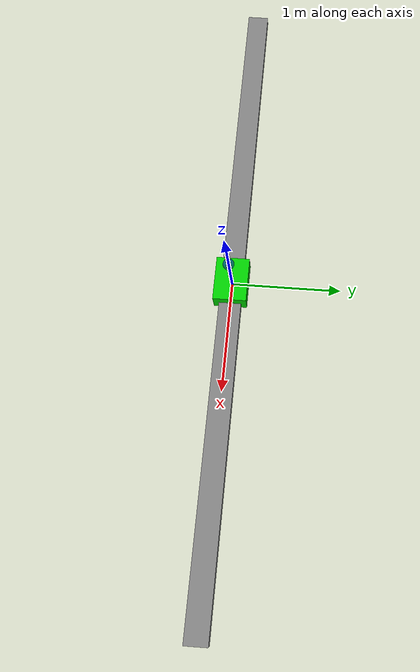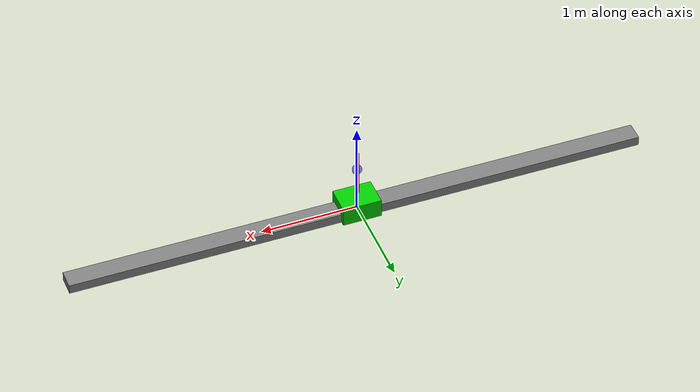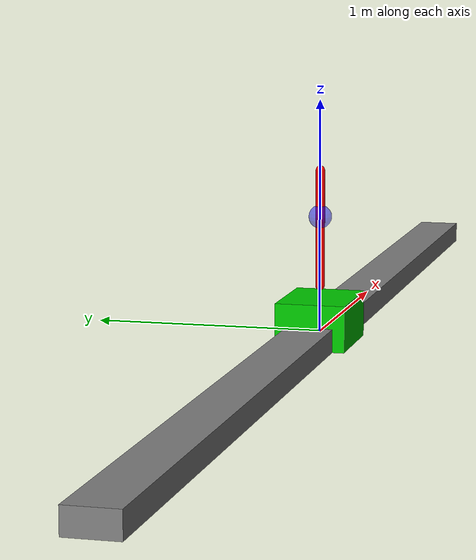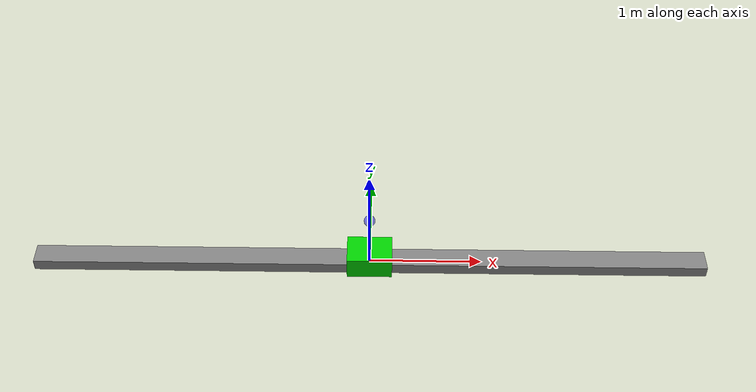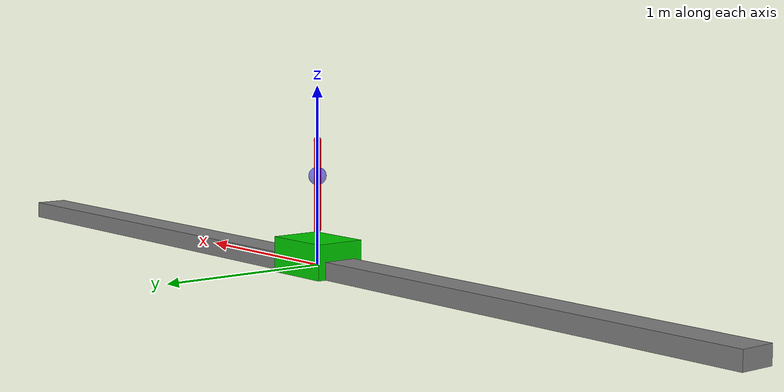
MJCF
<mujoco model="inverted pendulum">
  <compiler angle="degree" coordinate="local" inertiafromgeom="true"/>
  <option timestep="0.01" gravity="0 0 -9.81"/>

  <worldbody>
    <!-- 滑轨 (固定) -->
    <geom name="rail" type="box" size="3.0 0.1 0.05" pos="0 0 0" rgba="0.5 0.5 0.5 1"/>

    <!-- 小车 -->
    <body name="cart" pos="0 0 0.05">
      <joint name="slider" type="slide" axis="1 0 0" limited="true" range="-2.5 2.5" damping="0.1"/>
      <geom name="cart_geom" type="box" size="0.2 0.15 0.1" pos="0 0 0" rgba="0 0.8 0 1"/>
      <!-- 摆杆转轴 -->
      <body name="pole_axis" pos="0 0 0.15">
        <joint name="hinge" type="hinge" axis="0 1 0" damping="0.01"/>
        <geom name="pole" type="capsule" fromto="0 0 0 0 0 0.5" size="0.02" rgba="1 0 0 1"/>
      </body>
    </body>

    <!-- 目标标记（可选） -->
    <body name="target" pos="0 0 0.5">
      <geom name="target_sphere" type="sphere" size="0.05" rgba="0 0 1 0.5"/>
    </body>
  </worldbody>

  <actuator>
    <motor name="cart_motor" joint="slider" ctrlrange="-100 100" gear="100"/>
  </actuator>
</mujoco>
